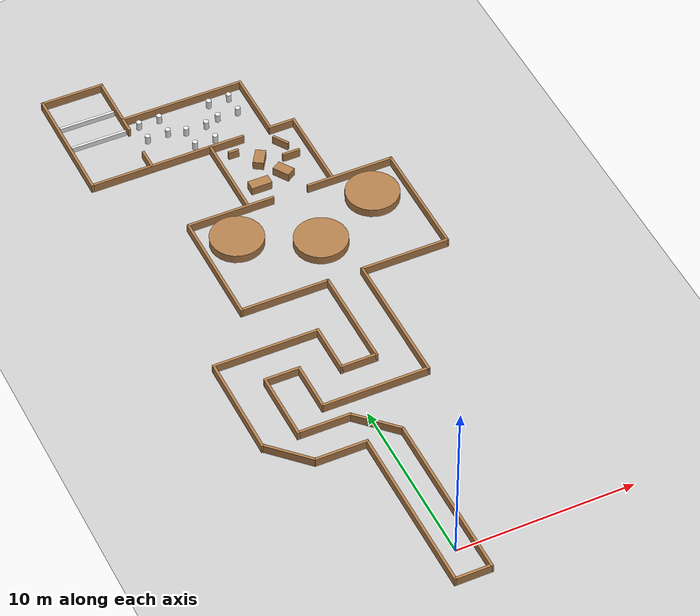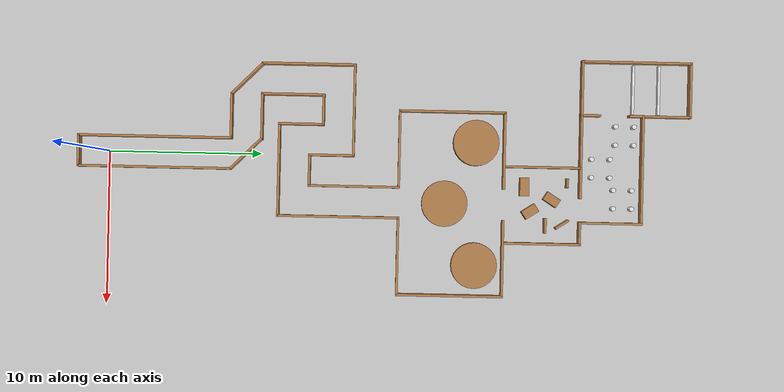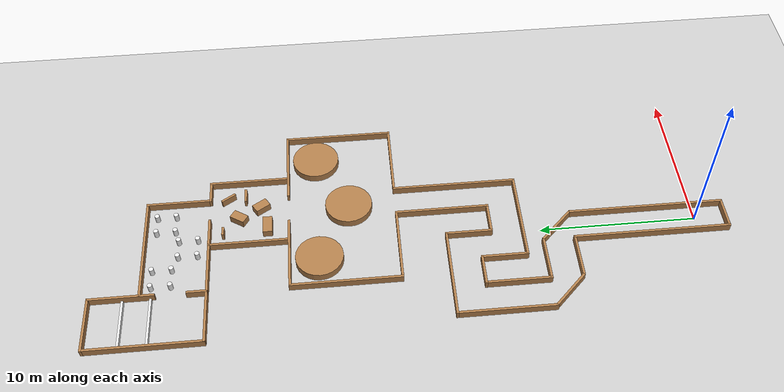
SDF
<sdf version="1.6">
 <world name="default">
  <light name="sun" type="directional">
   <pose>0 0 10 0 -0 0</pose>
   <diffuse>0.8 0.8 0.8 1</diffuse>
   <specular>0.1 0.1 0.1 1</specular>
   <attenuation>
    <range>1000</range>
    <constant>0.9</constant>
    <linear>0.01</linear>
    <quadratic>0.001</quadratic>
   </attenuation>
   <direction>-0.5 0.5 -1</direction>
  </light>
  <model name="ground_plane">
   <static>1</static>
   <link name="link">
    <collision name="collision">
     <geometry><plane><normal>0 0 1</normal><size>100 100</size></plane></geometry>
     <surface><friction><ode><mu>100</mu><mu2>50</mu2></ode></friction></surface>
    </collision>
    <visual name="visual">
     <cast_shadows>0</cast_shadows>
     <geometry><plane><normal>0 0 1</normal><size>100 100</size></plane></geometry>
     <material>
      <script><uri>file://media/materials/scripts/gazebo.material</uri><name>Gazebo/Grey</name></script>
     </material>
    </visual>
   </link>
  </model>
  <gravity>0 0 -9.8</gravity>
  <magnetic_field>6e-06 2.3e-05 -4.2e-05</magnetic_field>
  <atmosphere type="adiabatic"/>
  <physics name="default_physics" default="0" type="ode">
   <max_step_size>0.001</max_step_size>
   <real_time_factor>1</real_time_factor>
   <real_time_update_rate>1000</real_time_update_rate>
  </physics>
  <scene><ambient>0.4 0.4 0.4 1</ambient><background>0.7 0.7 0.7 1</background><shadows>1</shadows></scene>
  <spherical_coordinates>
   <surface_model>EARTH_WGS84</surface_model>
   <latitude_deg>0</latitude_deg>
   <longitude_deg>0</longitude_deg>
   <elevation>0</elevation>
   <heading_deg>0</heading_deg>
  </spherical_coordinates>
  <model name="racetrack_static">
   <link name="Wall_0">
    <collision name="Wall_0_Collision">
     <geometry><box><size>2 0.15 0.5</size></box></geometry>
     <pose>0 0 0.25 0 -0 0</pose>
    </collision>
    <visual name="Wall_0_Visual">
     <pose>0 0 0.25 0 -0 0</pose>
     <geometry><box><size>2 0.15 0.5</size></box></geometry>
     <material>
      <script><uri>file://media/materials/scripts/gazebo.material</uri><name>Gazebo/Wood</name></script>
      <ambient>1 1 1 1</ambient>
     </material>
    </visual>
    <pose>0 -1.925 0 0 -0 0</pose>
   </link>
   <link name="Wall_1">
    <collision name="Wall_1_Collision">
     <geometry><box><size>10 0.15 0.5</size></box></geometry>
     <pose>0 0 0.25 0 -0 0</pose>
    </collision>
    <visual name="Wall_1_Visual">
     <pose>0 0 0.25 0 -0 0</pose>
     <geometry><box><size>10 0.15 0.5</size></box></geometry>
     <material>
      <script><uri>file://media/materials/scripts/gazebo.material</uri><name>Gazebo/Wood</name></script>
      <ambient>1 1 1 1</ambient>
     </material>
    </visual>
    <pose>1 3 0 0 -0 -1.5708</pose>
   </link>
   <link name="Wall_2">
    <collision name="Wall_2_Collision">
     <geometry><box><size>10 0.15 0.5</size></box></geometry>
     <pose>0 0 0.25 0 -0 0</pose>
    </collision>
    <visual name="Wall_2_Visual">
     <pose>0 0 0.25 0 -0 0</pose>
     <geometry><box><size>10 0.15 0.5</size></box></geometry>
     <material>
      <script><uri>file://media/materials/scripts/gazebo.material</uri><name>Gazebo/Wood</name></script>
      <ambient>1 1 1 1</ambient>
     </material>
    </visual>
    <pose>-1 3 0 0 -0 -1.5708</pose>
   </link>
   <link name="Wall_3">
    <collision name="Wall_3_Collision">
     <geometry><box><size>3 0.15 0.5</size></box></geometry>
     <pose>0 0 0.25 0 -0 0</pose>
    </collision>
    <visual name="Wall_3_Visual">
     <pose>0 0 0.25 0 -0 0</pose>
     <geometry><box><size>3 0.15 0.5</size></box></geometry>
     <material>
      <script><uri>file://media/materials/scripts/gazebo.material</uri><name>Gazebo/Wood</name></script>
      <ambient>1 1 1 1</ambient>
     </material>
    </visual>
    <pose>-2.425 8 0 0 -0 0</pose>
   </link>
   <link name="Wall_4">
    <collision name="Wall_4_Collision">
     <geometry><box><size>3 0.15 0.5</size></box></geometry>
     <pose>0 0 0.25 0 -0 0</pose>
    </collision>
    <visual name="Wall_4_Visual">
     <pose>0 0 0.25 0 -0 0</pose>
     <geometry><box><size>3 0.15 0.5</size></box></geometry>
     <material>
      <script><uri>file://media/materials/scripts/gazebo.material</uri><name>Gazebo/Wood</name></script>
      <ambient>1 1 1 1</ambient>
     </material>
    </visual>
    <pose>-2.425 10 0 0 -0 0</pose>
   </link>
   <link name="Wall_5">
    <collision name="Wall_5_Collision">
     <geometry><box><size>6 0.15 0.5</size></box></geometry>
     <pose>0 0 0.25 0 -0 0</pose>
    </collision>
    <visual name="Wall_5_Visual">
     <pose>0 0 0.25 0 -0 0</pose>
     <geometry><box><size>6 0.15 0.5</size></box></geometry>
     <material>
      <script><uri>file://media/materials/scripts/gazebo.material</uri><name>Gazebo/Wood</name></script>
      <ambient>1 1 1 1</ambient>
     </material>
    </visual>
    <pose>-5.925 12.925 0 0 -0 -1.5708</pose>
   </link>
   <link name="Wall_6">
    <collision name="Wall_6_Collision">
     <geometry><box><size>4 0.15 0.5</size></box></geometry>
     <pose>0 0 0.25 0 -0 0</pose>
    </collision>
    <visual name="Wall_6_Visual">
     <pose>0 0 0.25 0 -0 0</pose>
     <geometry><box><size>4 0.15 0.5</size></box></geometry>
     <material>
      <script><uri>file://media/materials/scripts/gazebo.material</uri><name>Gazebo/Wood</name></script>
      <ambient>1 1 1 1</ambient>
     </material>
    </visual>
    <pose>-3.925 11.925 0 0 -0 -1.5708</pose>
   </link>
   <link name="Wall_7">
    <collision name="Wall_7_Collision">
     <geometry><box><size>2.85 0.15 0.5</size></box></geometry>
     <pose>0 0 0.25 0 -0 0</pose>
    </collision>
    <visual name="Wall_7_Visual">
     <pose>0 0 0.25 0 -0 0</pose>
     <geometry><box><size>2.85 0.15 0.5</size></box></geometry>
     <material>
      <script><uri>file://media/materials/scripts/gazebo.material</uri><name>Gazebo/Wood</name></script>
      <ambient>1 1 1 1</ambient>
     </material>
    </visual>
    <pose>0 9 0 0 -0 -0.7854</pose>
   </link>
   <link name="Wall_8">
    <collision name="Wall_8_Collision">
     <geometry><box><size>2.85 0.15 0.5</size></box></geometry>
     <pose>0 0 0.25 0 -0 0</pose>
    </collision>
    <visual name="Wall_8_Visual">
     <pose>0 0 0.25 0 -0 0</pose>
     <geometry><box><size>2.85 0.15 0.5</size></box></geometry>
     <material>
      <script><uri>file://media/materials/scripts/gazebo.material</uri><name>Gazebo/Wood</name></script>
      <ambient>1 1 1 1</ambient>
     </material>
    </visual>
    <pose>-4.9 9 0 0 -0 -0.7854</pose>
   </link>
   <link name="Wall_9">
    <collision name="Wall_9_Collision">
     <geometry><box><size>2 0.15 0.5</size></box></geometry>
     <pose>0 0 0.25 0 -0 0</pose>
    </collision>
    <visual name="Wall_9_Visual">
     <pose>0 0 0.25 0 -0 0</pose>
     <geometry><box><size>2 0.15 0.5</size></box></geometry>
     <material>
      <script><uri>file://media/materials/scripts/gazebo.material</uri><name>Gazebo/Wood</name></script>
      <ambient>1 1 1 1</ambient>
     </material>
    </visual>
    <pose>-3 14 0 0 -0 0</pose>
   </link>
   <link name="Wall_10">
    <collision name="Wall_10_Collision">
     <geometry><box><size>6 0.15 0.5</size></box></geometry>
     <pose>0 0 0.25 0 -0 0</pose>
    </collision>
    <visual name="Wall_10_Visual">
     <pose>0 0 0.25 0 -0 0</pose>
     <geometry><box><size>6 0.15 0.5</size></box></geometry>
     <material>
      <script><uri>file://media/materials/scripts/gazebo.material</uri><name>Gazebo/Wood</name></script>
      <ambient>1 1 1 1</ambient>
     </material>
    </visual>
    <pose>-3 16 0 0 -0 0</pose>
   </link>
   <link name="Wall_11">
    <collision name="Wall_11_Collision">
     <geometry><box><size>3 0.15 0.5</size></box></geometry>
     <pose>0 0 0.25 0 -0 0</pose>
    </collision>
    <visual name="Wall_11_Visual">
     <pose>0 0 0.25 0 -0 0</pose>
     <geometry><box><size>3 0.15 0.5</size></box></geometry>
     <material>
      <script><uri>file://media/materials/scripts/gazebo.material</uri><name>Gazebo/Wood</name></script>
      <ambient>1 1 1 1</ambient>
     </material>
    </visual>
    <pose>-2 12.575 0 0 -0 -1.5708</pose>
   </link>
   <link name="Wall_12">
    <collision name="Wall_12_Collision">
     <geometry><box><size>6 0.15 0.5</size></box></geometry>
     <pose>0 0 0.25 0 -0 0</pose>
    </collision>
    <visual name="Wall_12_Visual">
     <pose>0 0 0.25 0 -0 0</pose>
     <geometry><box><size>6 0.15 0.5</size></box></geometry>
     <material>
      <script><uri>file://media/materials/scripts/gazebo.material</uri><name>Gazebo/Wood</name></script>
      <ambient>1 1 1 1</ambient>
     </material>
    </visual>
    <pose>1 11.15 0 0 -0 0</pose>
   </link>
   <link name="Wall_13">
    <collision name="Wall_13_Collision">
     <geometry><box><size>3 0.15 0.5</size></box></geometry>
     <pose>0 0 0.25 0 -0 0</pose>
    </collision>
    <visual name="Wall_13_Visual">
     <pose>0 0 0.25 0 -0 0</pose>
     <geometry><box><size>3 0.15 0.5</size></box></geometry>
     <material>
      <script><uri>file://media/materials/scripts/gazebo.material</uri><name>Gazebo/Wood</name></script>
      <ambient>1 1 1 1</ambient>
     </material>
    </visual>
    <pose>0 14.575 0 0 -0 -1.5708</pose>
   </link>
   <link name="Wall_14">
    <collision name="Wall_14_Collision">
     <geometry><box><size>2 0.15 0.5</size></box></geometry>
     <pose>0 0 0.25 0 -0 0</pose>
    </collision>
    <visual name="Wall_14_Visual">
     <pose>0 0 0.25 0 -0 0</pose>
     <geometry><box><size>2 0.15 0.5</size></box></geometry>
     <material>
      <script><uri>file://media/materials/scripts/gazebo.material</uri><name>Gazebo/Wood</name></script>
      <ambient>1 1 1 1</ambient>
     </material>
    </visual>
    <pose>1 13.15 0 0 -0 0</pose>
   </link>
   <link name="Wall_15">
    <collision name="Wall_15_Collision">
     <geometry><box><size>6 0.15 0.5</size></box></geometry>
     <pose>0 0 0.25 0 -0 0</pose>
    </collision>
    <visual name="Wall_15_Visual">
     <pose>0 0 0.25 0 -0 0</pose>
     <geometry><box><size>6 0.15 0.5</size></box></geometry>
     <material>
      <script><uri>file://media/materials/scripts/gazebo.material</uri><name>Gazebo/Wood</name></script>
      <ambient>1 1 1 1</ambient>
     </material>
    </visual>
    <pose>2 16.075 0 0 -0 -1.5708</pose>
   </link>
   <link name="Wall_16">
    <collision name="Wall_16_Collision">
     <geometry><box><size>8 0.15 0.5</size></box></geometry>
     <pose>0 0 0.25 0 -0 0</pose>
    </collision>
    <visual name="Wall_16_Visual">
     <pose>0 0 0.25 0 -0 0</pose>
     <geometry><box><size>8 0.15 0.5</size></box></geometry>
     <material>
      <script><uri>file://media/materials/scripts/gazebo.material</uri><name>Gazebo/Wood</name></script>
      <ambient>1 1 1 1</ambient>
     </material>
    </visual>
    <pose>4 15.075 0 0 -0 -1.5708</pose>
   </link>
   <link name="Wall_17">
    <collision name="Wall_17_Collision">
     <geometry><box><size>5 0.15 0.5</size></box></geometry>
     <pose>0 0 0.25 0 -0 0</pose>
    </collision>
    <visual name="Wall_17_Visual">
     <pose>0 0 0.25 0 -0 0</pose>
     <geometry><box><size>5 0.15 0.5</size></box></geometry>
     <material>
      <script><uri>file://media/materials/scripts/gazebo.material</uri><name>Gazebo/Wood</name></script>
      <ambient>1 1 1 1</ambient>
     </material>
    </visual>
    <pose>-0.5 19 0 0 -0 0</pose>
   </link>
   <link name="Wall_18">
    <collision name="Wall_18_Collision">
     <geometry><box><size>5 0.15 0.5</size></box></geometry>
     <pose>0 0 0.25 0 -0 0</pose>
    </collision>
    <visual name="Wall_18_Visual">
     <pose>0 0 0.25 0 -0 0</pose>
     <geometry><box><size>5 0.15 0.5</size></box></geometry>
     <material>
      <script><uri>file://media/materials/scripts/gazebo.material</uri><name>Gazebo/Wood</name></script>
      <ambient>1 1 1 1</ambient>
     </material>
    </visual>
    <pose>6.5 19 0 0 -0 0</pose>
   </link>
   <link name="round_obstacle">
    <collision name="round_obstacle_Collision">
     <geometry><cylinder><radius>1.5</radius><length>0.5</length></cylinder></geometry>
     <pose>0 0 0.25 0 -0 0</pose>
    </collision>
    <visual name="round_obstacle_Visual">
     <pose>0 0 0.25 0 -0 0</pose>
     <geometry><cylinder><radius>1.5</radius><length>0.5</length></cylinder></geometry>
     <material>
      <script><uri>file://media/materials/scripts/gazebo.material</uri><name>Gazebo/Wood</name></script>
      <ambient>1 1 1 1</ambient>
     </material>
    </visual>
    <pose>3 22 0 0 -0 1.5708</pose>
   </link>
   <link name="round_obstacle_1">
    <collision name="round_obstacle_1_Collision">
     <geometry><cylinder><radius>1.5</radius><length>0.5</length></cylinder></geometry>
     <pose>0 0 0.25 0 -0 0</pose>
    </collision>
    <visual name="round_obstacle_1_Visual">
     <pose>0 0 0.25 0 -0 0</pose>
     <geometry><cylinder><radius>1.5</radius><length>0.5</length></cylinder></geometry>
     <material>
      <script><uri>file://media/materials/scripts/gazebo.material</uri><name>Gazebo/Wood</name></script>
      <ambient>1 1 1 1</ambient>
     </material>
    </visual>
    <pose>-1 24 0 0 -0 1.5708</pose>
   </link>
   <link name="round_obstacle_2">
    <collision name="round_obstacle_2_Collision">
     <geometry><cylinder><radius>1.5</radius><length>0.5</length></cylinder></geometry>
     <pose>0 0 0.25 0 -0 0</pose>
    </collision>
    <visual name="round_obstacle_2_Visual">
     <pose>0 0 0.25 0 -0 0</pose>
     <geometry><cylinder><radius>1.5</radius><length>0.5</length></cylinder></geometry>
     <material>
      <script><uri>file://media/materials/scripts/gazebo.material</uri><name>Gazebo/Wood</name></script>
      <ambient>1 1 1 1</ambient>
     </material>
    </visual>
    <pose>7 24 0 0 -0 1.5708</pose>
   </link>
   <link name="Wall_19">
    <collision name="Wall_19_Collision">
     <geometry><box><size>7 0.15 0.5</size></box></geometry>
     <pose>0 0 0.25 0 -0 0</pose>
    </collision>
    <visual name="Wall_19_Visual">
     <pose>0 0 0.25 0 -0 0</pose>
     <geometry><box><size>7 0.15 0.5</size></box></geometry>
     <material>
      <script><uri>file://media/materials/scripts/gazebo.material</uri><name>Gazebo/Wood</name></script>
      <ambient>1 1 1 1</ambient>
     </material>
    </visual>
    <pose>-3 22.425 0 0 -0 -1.5708</pose>
   </link>
   <link name="Wall_20">
    <collision name="Wall_20_Collision">
     <geometry><box><size>7 0.15 0.5</size></box></geometry>
     <pose>0 0 0.25 0 -0 0</pose>
    </collision>
    <visual name="Wall_20_Visual">
     <pose>0 0 0.25 0 -0 0</pose>
     <geometry><box><size>7 0.15 0.5</size></box></geometry>
     <material>
      <script><uri>file://media/materials/scripts/gazebo.material</uri><name>Gazebo/Wood</name></script>
      <ambient>1 1 1 1</ambient>
     </material>
    </visual>
    <pose>9 22.425 0 0 -0 -1.5708</pose>
   </link>
   <link name="Wall_21">
    <collision name="Wall_21_Collision">
     <geometry><box><size>5 0.15 0.5</size></box></geometry>
     <pose>0 0 0.25 0 -0 0</pose>
    </collision>
    <visual name="Wall_21_Visual">
     <pose>0 0 0.25 0 -0 0</pose>
     <geometry><box><size>5 0.15 0.5</size></box></geometry>
     <material>
      <script><uri>file://media/materials/scripts/gazebo.material</uri><name>Gazebo/Wood</name></script>
      <ambient>1 1 1 1</ambient>
     </material>
    </visual>
    <pose>-0.5 25.85 0 0 -0 0</pose>
   </link>
   <link name="Wall_22">
    <collision name="Wall_22_Collision">
     <geometry><box><size>5 0.15 0.5</size></box></geometry>
     <pose>0 0 0.25 0 -0 0</pose>
    </collision>
    <visual name="Wall_22_Visual">
     <pose>0 0 0.25 0 -0 0</pose>
     <geometry><box><size>5 0.15 0.5</size></box></geometry>
     <material>
      <script><uri>file://media/materials/scripts/gazebo.material</uri><name>Gazebo/Wood</name></script>
      <ambient>1 1 1 1</ambient>
     </material>
    </visual>
    <pose>6.5 25.85 0 0 -0 0</pose>
   </link>
   <link name="Wall_23">
    <collision name="Wall_23_Collision">
     <geometry><box><size>5 0.15 0.5</size></box></geometry>
     <pose>0 0 0.25 0 -0 0</pose>
    </collision>
    <visual name="Wall_23_Visual">
     <pose>0 0 0.25 0 -0 0</pose>
     <geometry><box><size>5 0.15 0.5</size></box></geometry>
     <material>
      <script><uri>file://media/materials/scripts/gazebo.material</uri><name>Gazebo/Wood</name></script>
      <ambient>1 1 1 1</ambient>
     </material>
    </visual>
    <pose>0.5 28.425 0 0 -0 -1.5708</pose>
   </link>
   <link name="Wall_24">
    <collision name="Wall_24_Collision">
     <geometry><box><size>5 0.15 0.5</size></box></geometry>
     <pose>0 0 0.25 0 -0 0</pose>
    </collision>
    <visual name="Wall_24_Visual">
     <pose>0 0 0.25 0 -0 0</pose>
     <geometry><box><size>5 0.15 0.5</size></box></geometry>
     <material>
      <script><uri>file://media/materials/scripts/gazebo.material</uri><name>Gazebo/Wood</name></script>
      <ambient>1 1 1 1</ambient>
     </material>
    </visual>
    <pose>5.5 28.425 0 0 -0 -1.5708</pose>
   </link>
   <link name="Wall_25">
    <collision name="Wall_25_Collision">
     <geometry><box><size>9 0.15 0.5</size></box></geometry>
     <pose>0 0 0.25 0 -0 0</pose>
    </collision>
    <visual name="Wall_25_Visual">
     <pose>0 0 0.25 0 -0 0</pose>
     <geometry><box><size>9 0.15 0.5</size></box></geometry>
     <material>
      <script><uri>file://media/materials/scripts/gazebo.material</uri><name>Gazebo/Wood</name></script>
      <ambient>1 1 1 1</ambient>
     </material>
    </visual>
    <pose>-2 30.85 0 0 -0 0</pose>
   </link>
   <link name="Wall_26">
    <collision name="Wall_26_Collision">
     <geometry><box><size>1.5 0.15 0.5</size></box></geometry>
     <pose>0 0 0.25 0 -0 0</pose>
    </collision>
    <visual name="Wall_26_Visual">
     <pose>0 0 0.25 0 -0 0</pose>
     <geometry><box><size>1.5 0.15 0.5</size></box></geometry>
     <material>
      <script><uri>file://media/materials/scripts/gazebo.material</uri><name>Gazebo/Wood</name></script>
      <ambient>1 1 1 1</ambient>
     </material>
    </visual>
    <pose>4.75 30.85 0 0 -0 0</pose>
   </link>
   <link name="sobst_0">
    <collision name="sobst_0_Collision">
     <geometry><box><size>1.2 0.6 0.5</size></box></geometry>
     <pose>0 0 0.25 0 -0 0</pose>
    </collision>
    <visual name="sobst_0_Visual">
     <pose>0 0 0.25 0 -0 0</pose>
     <geometry><box><size>1.2 0.6 0.5</size></box></geometry>
     <material>
      <script><uri>file://media/materials/scripts/gazebo.material</uri><name>Gazebo/Wood</name></script>
      <ambient>1 1 1 1</ambient>
     </material>
    </visual>
    <pose>1.8 27.2 0 0 -0 0</pose>
   </link>
   <link name="sobst_1">
    <collision name="sobst_1_Collision">
     <geometry><box><size>1 0.6 0.5</size></box></geometry>
     <pose>0 0 0.25 0 -0 0</pose>
    </collision>
    <visual name="sobst_1_Visual">
     <pose>0 0 0.25 0 -0 0</pose>
     <geometry><box><size>1 0.6 0.5</size></box></geometry>
     <material>
      <script><uri>file://media/materials/scripts/gazebo.material</uri><name>Gazebo/Wood</name></script>
      <ambient>1 1 1 1</ambient>
     </material>
    </visual>
    <pose>3.4 27.6 0 0 -0 -1</pose>
   </link>
   <link name="sobst_2">
    <collision name="sobst_2_Collision">
     <geometry><box><size>1 0.6 0.5</size></box></geometry>
     <pose>0 0 0.25 0 -0 0</pose>
    </collision>
    <visual name="sobst_2_Visual">
     <pose>0 0 0.25 0 -0 0</pose>
     <geometry><box><size>1 0.6 0.5</size></box></geometry>
     <material>
      <script><uri>file://media/materials/scripts/gazebo.material</uri><name>Gazebo/Wood</name></script>
      <ambient>1 1 1 1</ambient>
     </material>
    </visual>
    <pose>2.6 29 0 0 -0 1</pose>
   </link>
   <link name="sobst_3">
    <collision name="sobst_3_Collision">
     <geometry><box><size>1 0.15 0.5</size></box></geometry>
     <pose>0 0 0.25 0 -0 0</pose>
    </collision>
    <visual name="sobst_3_Visual">
     <pose>0 0 0.25 0 -0 0</pose>
     <geometry><box><size>1 0.15 0.5</size></box></geometry>
     <material>
      <script><uri>file://media/materials/scripts/gazebo.material</uri><name>Gazebo/Wood</name></script>
      <ambient>1 1 1 1</ambient>
     </material>
    </visual>
    <pose>4.3 28.6 0 0 -0 0</pose>
   </link>
   <link name="sobst_4">
    <collision name="sobst_4_Collision">
     <geometry><box><size>0.6 0.15 0.5</size></box></geometry>
     <pose>0 0 0.25 0 -0 0</pose>
    </collision>
    <visual name="sobst_4_Visual">
     <pose>0 0 0.25 0 -0 0</pose>
     <geometry><box><size>0.6 0.15 0.5</size></box></geometry>
     <material>
      <script><uri>file://media/materials/scripts/gazebo.material</uri><name>Gazebo/Wood</name></script>
      <ambient>1 1 1 1</ambient>
     </material>
    </visual>
    <pose>1.5 30 0 0 -0 0</pose>
   </link>
   <link name="sobst_5">
    <collision name="sobst_5_Collision">
     <geometry><box><size>1 0.15 0.5</size></box></geometry>
     <pose>0 0 0.25 0 -0 0</pose>
    </collision>
    <visual name="sobst_5_Visual">
     <pose>0 0 0.25 0 -0 0</pose>
     <geometry><box><size>1 0.15 0.5</size></box></geometry>
     <material>
      <script><uri>file://media/materials/scripts/gazebo.material</uri><name>Gazebo/Wood</name></script>
      <ambient>1 1 1 1</ambient>
     </material>
    </visual>
    <pose>4.2 29.7 0 0 -0 -1</pose>
   </link>
   <link name="Wall_27">
    <collision name="Wall_27_Collision">
     <geometry><box><size>4 0.15 0.5</size></box></geometry>
     <pose>0 0 0.25 0 -0 0</pose>
    </collision>
    <visual name="Wall_27_Visual">
     <pose>0 0 0.25 0 -0 0</pose>
     <geometry><box><size>4 0.15 0.5</size></box></geometry>
     <material>
      <script><uri>file://media/materials/scripts/gazebo.material</uri><name>Gazebo/Wood</name></script>
      <ambient>1 1 1 1</ambient>
     </material>
    </visual>
    <pose>4.075 32.925 0 0 -0 -1.5708</pose>
   </link>
   <link name="Wall_28">
    <collision name="Wall_28_Collision">
     <geometry><box><size>7 0.15 0.5</size></box></geometry>
     <pose>0 0 0.25 0 -0 0</pose>
    </collision>
    <visual name="Wall_28_Visual">
     <pose>0 0 0.25 0 -0 0</pose>
     <geometry><box><size>7 0.15 0.5</size></box></geometry>
     <material>
      <script><uri>file://media/materials/scripts/gazebo.material</uri><name>Gazebo/Wood</name></script>
      <ambient>1 1 1 1</ambient>
     </material>
    </visual>
    <pose>0.5 34.85 0 0 -0 0</pose>
   </link>
   <link name="Wall_29">
    <collision name="Wall_29_Collision">
     <geometry><box><size>4 0.15 0.5</size></box></geometry>
     <pose>0 0 0.25 0 -0 0</pose>
    </collision>
    <visual name="Wall_29_Visual">
     <pose>0 0 0.25 0 -0 0</pose>
     <geometry><box><size>4 0.15 0.5</size></box></geometry>
     <material>
      <script><uri>file://media/materials/scripts/gazebo.material</uri><name>Gazebo/Wood</name></script>
      <ambient>1 1 1 1</ambient>
     </material>
    </visual>
    <pose>-2.95 35.925 0 0 -0 -1.5708</pose>
   </link>
   <link name="Wall_30">
    <collision name="Wall_30_Collision">
     <geometry><box><size>1.3 0.15 0.5</size></box></geometry>
     <pose>0 0 0.25 0 -0 0</pose>
    </collision>
    <visual name="Wall_30_Visual">
     <pose>0 0 0.25 0 -0 0</pose>
     <geometry><box><size>1.3 0.15 0.5</size></box></geometry>
     <material>
      <script><uri>file://media/materials/scripts/gazebo.material</uri><name>Gazebo/Wood</name></script>
      <ambient>1 1 1 1</ambient>
     </material>
    </visual>
    <pose>-2.95 31.425 0 0 -0 -1.5708</pose>
   </link>
   <link name="Wall_31">
    <collision name="Wall_31_Collision">
     <geometry><box><size>7.15 0.15 0.5</size></box></geometry>
     <pose>0 0 0.25 0 -0 0</pose>
    </collision>
    <visual name="Wall_31_Visual">
     <pose>0 0 0.25 0 -0 0</pose>
     <geometry><box><size>7.15 0.15 0.5</size></box></geometry>
     <material>
      <script><uri>file://media/materials/scripts/gazebo.material</uri><name>Gazebo/Wood</name></script>
      <ambient>1 1 1 1</ambient>
     </material>
    </visual>
    <pose>-6.45 34.35 0 0 -0 -1.5708</pose>
   </link>
   <link name="Wall_32">
    <collision name="Wall_32_Collision">
     <geometry><box><size>3.65 0.15 0.5</size></box></geometry>
     <pose>0 0 0.25 0 -0 0</pose>
    </collision>
    <visual name="Wall_32_Visual">
     <pose>0 0 0.25 0 -0 0</pose>
     <geometry><box><size>3.65 0.15 0.5</size></box></geometry>
     <material>
      <script><uri>file://media/materials/scripts/gazebo.material</uri><name>Gazebo/Wood</name></script>
      <ambient>1 1 1 1</ambient>
     </material>
    </visual>
    <pose>-4.7 37.9 0 0 -0 0</pose>
   </link>
   <static>1</static>
  </model>
  <model name="moving_obstacles_round">
   <pose>0.5 32.15 0 0 -0 0</pose>
   <link name="obstacle">
    <collision name="obstacle_1">
     <pose>-0.6 -0.6 0.25 0 0 0</pose>
     <geometry><cylinder><radius>0.15</radius><length>0.5</length></cylinder></geometry>
    </collision>
    <visual name="obstacle_1">
     <pose>-0.6 -0.6 0.25 0 0 0</pose>
     <geometry><cylinder><radius>0.15</radius><length>0.5</length></cylinder></geometry>
     <material>
      <script><uri>file://media/materials/scripts/gazebo.material</uri><name>Gazebo/White</name></script>
     </material>
    </visual>
    <collision name="obstacle_2">
     <pose>-0.6 0.6 0.25 0 0 0</pose>
     <geometry><cylinder><radius>0.15</radius><length>0.5</length></cylinder></geometry>
    </collision>
    <visual name="obstacle_2">
     <pose>-0.6 0.6 0.25 0 0 0</pose>
     <geometry><cylinder><radius>0.15</radius><length>0.5</length></cylinder></geometry>
     <material>
      <script><uri>file://media/materials/scripts/gazebo.material</uri><name>Gazebo/White</name></script>
     </material>
    </visual>
    <collision name="obstacle_3">
     <pose>0.6 -0.6 0.25 0 0 0</pose>
     <geometry><cylinder><radius>0.15</radius><length>0.5</length></cylinder></geometry>
    </collision>
    <visual name="obstacle_3">
     <pose>0.6 -0.6 0.25 0 0 0</pose>
     <geometry><cylinder><radius>0.15</radius><length>0.5</length></cylinder></geometry>
     <material>
      <script><uri>file://media/materials/scripts/gazebo.material</uri><name>Gazebo/White</name></script>
     </material>
    </visual>
    <collision name="obstacle_4">
     <pose>0.6 0.6 0.25 0 0 0</pose>
     <geometry><cylinder><radius>0.15</radius><length>0.5</length></cylinder></geometry>
    </collision>
    <visual name="obstacle_4">
     <pose>0.6 0.6 0.25 0 0 0</pose>
     <geometry><cylinder><radius>0.15</radius><length>0.5</length></cylinder></geometry>
     <material>
      <script><uri>file://media/materials/scripts/gazebo.material</uri><name>Gazebo/White</name></script>
     </material>
    </visual>
   </link>
  </model>
  <model name="moving_obstacles_round_1">
   <pose>2.5 33.6 0 0 -0 0</pose>
   <link name="obstacle">
    <collision name="obstacle_1">
     <pose>-0.6 -0.6 0.25 0 0 0</pose>
     <geometry><cylinder><radius>0.15</radius><length>0.5</length></cylinder></geometry>
    </collision>
    <visual name="obstacle_1">
     <pose>-0.6 -0.6 0.25 0 0 0</pose>
     <geometry><cylinder><radius>0.15</radius><length>0.5</length></cylinder></geometry>
     <material>
      <script><uri>file://media/materials/scripts/gazebo.material</uri><name>Gazebo/White</name></script>
     </material>
    </visual>
    <collision name="obstacle_2">
     <pose>-0.6 0.6 0.25 0 0 0</pose>
     <geometry><cylinder><radius>0.15</radius><length>0.5</length></cylinder></geometry>
    </collision>
    <visual name="obstacle_2">
     <pose>-0.6 0.6 0.25 0 0 0</pose>
     <geometry><cylinder><radius>0.15</radius><length>0.5</length></cylinder></geometry>
     <material>
      <script><uri>file://media/materials/scripts/gazebo.material</uri><name>Gazebo/White</name></script>
     </material>
    </visual>
    <collision name="obstacle_3">
     <pose>0.6 -0.6 0.25 0 0 0</pose>
     <geometry><cylinder><radius>0.15</radius><length>0.5</length></cylinder></geometry>
    </collision>
    <visual name="obstacle_3">
     <pose>0.6 -0.6 0.25 0 0 0</pose>
     <geometry><cylinder><radius>0.15</radius><length>0.5</length></cylinder></geometry>
     <material>
      <script><uri>file://media/materials/scripts/gazebo.material</uri><name>Gazebo/White</name></script>
     </material>
    </visual>
    <collision name="obstacle_4">
     <pose>0.6 0.6 0.25 0 0 0</pose>
     <geometry><cylinder><radius>0.15</radius><length>0.5</length></cylinder></geometry>
    </collision>
    <visual name="obstacle_4">
     <pose>0.6 0.6 0.25 0 0 0</pose>
     <geometry><cylinder><radius>0.15</radius><length>0.5</length></cylinder></geometry>
     <material>
      <script><uri>file://media/materials/scripts/gazebo.material</uri><name>Gazebo/White</name></script>
     </material>
    </visual>
   </link>
  </model>
  <model name="moving_obstacles_round_2">
   <pose>-1.65 33.67 0 0 -0 0</pose>
   <link name="obstacle">
    <collision name="obstacle_1">
     <pose>-0.6 -0.6 0.25 0 0 0</pose>
     <geometry><cylinder><radius>0.15</radius><length>0.5</length></cylinder></geometry>
    </collision>
    <visual name="obstacle_1">
     <pose>-0.6 -0.6 0.25 0 0 0</pose>
     <geometry><cylinder><radius>0.15</radius><length>0.5</length></cylinder></geometry>
     <material>
      <script><uri>file://media/materials/scripts/gazebo.material</uri><name>Gazebo/White</name></script>
     </material>
    </visual>
    <collision name="obstacle_2">
     <pose>-0.6 0.6 0.25 0 0 0</pose>
     <geometry><cylinder><radius>0.15</radius><length>0.5</length></cylinder></geometry>
    </collision>
    <visual name="obstacle_2">
     <pose>-0.6 0.6 0.25 0 0 0</pose>
     <geometry><cylinder><radius>0.15</radius><length>0.5</length></cylinder></geometry>
     <material>
      <script><uri>file://media/materials/scripts/gazebo.material</uri><name>Gazebo/White</name></script>
     </material>
    </visual>
    <collision name="obstacle_3">
     <pose>0.6 -0.6 0.25 0 0 0</pose>
     <geometry><cylinder><radius>0.15</radius><length>0.5</length></cylinder></geometry>
    </collision>
    <visual name="obstacle_3">
     <pose>0.6 -0.6 0.25 0 0 0</pose>
     <geometry><cylinder><radius>0.15</radius><length>0.5</length></cylinder></geometry>
     <material>
      <script><uri>file://media/materials/scripts/gazebo.material</uri><name>Gazebo/White</name></script>
     </material>
    </visual>
    <collision name="obstacle_4">
     <pose>0.6 0.6 0.25 0 0 0</pose>
     <geometry><cylinder><radius>0.15</radius><length>0.5</length></cylinder></geometry>
    </collision>
    <visual name="obstacle_4">
     <pose>0.6 0.6 0.25 0 0 0</pose>
     <geometry><cylinder><radius>0.15</radius><length>0.5</length></cylinder></geometry>
     <material>
      <script><uri>file://media/materials/scripts/gazebo.material</uri><name>Gazebo/White</name></script>
     </material>
    </visual>
   </link>
  </model>
  <model name="gate_moving">
   <pose>-4.67 34.2 0.01 0 -0 0</pose>
   <link name="gate_1">
    <collision name="gate_1_col"><geometry><box><size>3.2 0.15 0.5</size></box></geometry></collision>
    <visual name="gate_1_vis">
     <geometry><box><size>3.2 0.15 0.5</size></box></geometry>
     <material>
      <script><uri>file://media/materials/scripts/gazebo.material</uri><name>Gazebo/White</name></script>
     </material>
    </visual>
    <collision name="gate_2_col">
     <pose>0 1.68 0 0 0 0</pose>
     <geometry><box><size>3.2 0.15 0.5</size></box></geometry>
    </collision>
    <visual name="gate_2_vis">
     <pose>-0 1.68 0 0 0 0</pose>
     <geometry><box><size>3.2 0.15 0.5</size></box></geometry>
     <material>
      <script><uri>file://media/materials/scripts/gazebo.material</uri><name>Gazebo/White</name></script>
     </material>
    </visual>
    <gravity>0</gravity>
   </link>
  </model>
 </world>
</sdf>
